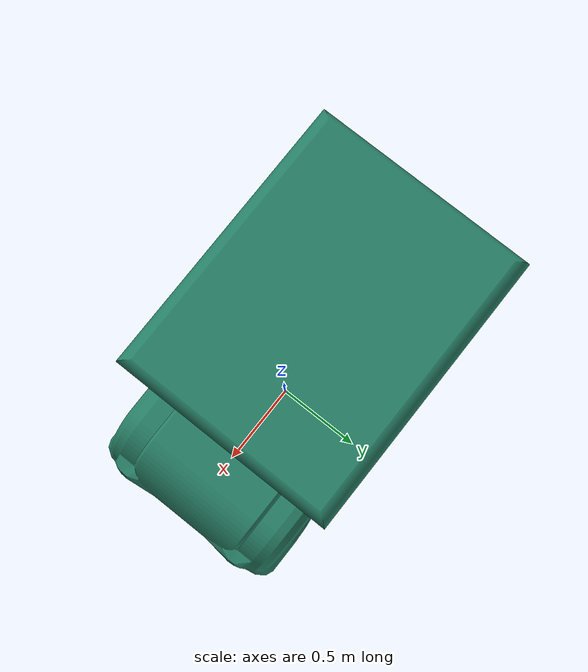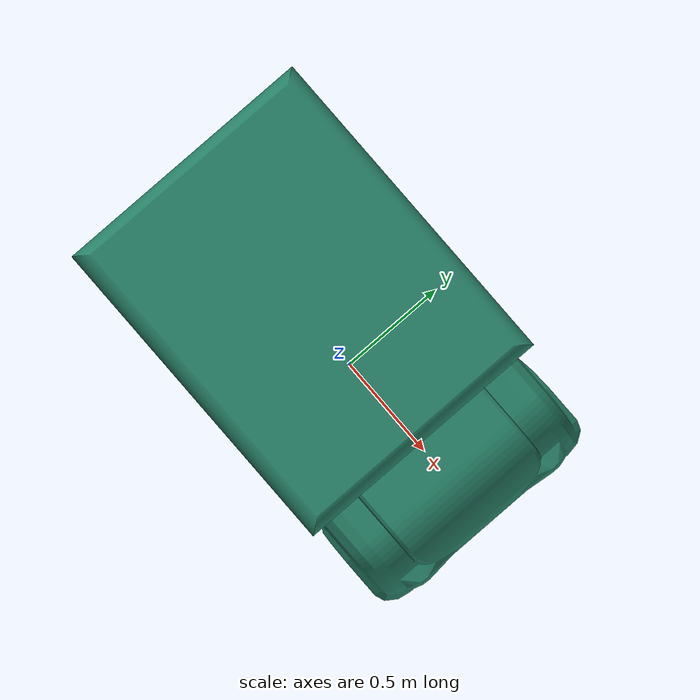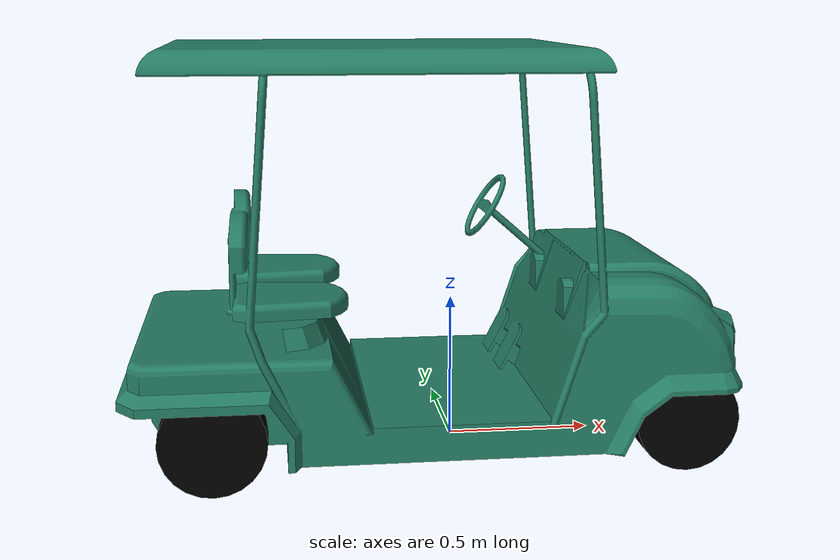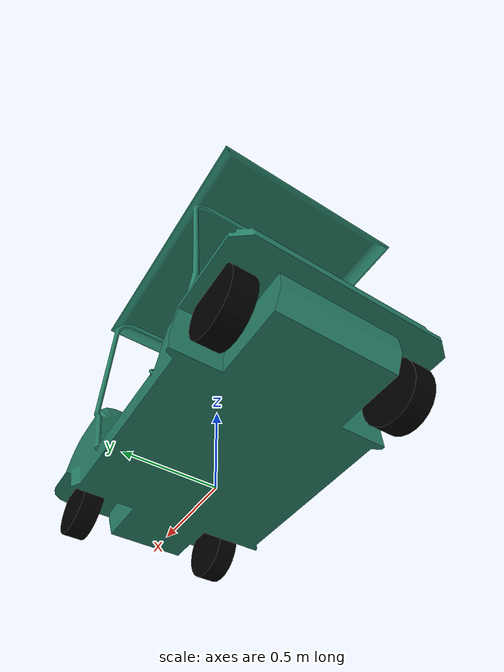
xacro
<?xml version="1.0"?>
<robot name="awin_golf_cart">

  <material name="chassis_mat">
      <color rgba="0.15 0.5 0.4 1"/>
  </material>
  <material name="tire_mat">
    <color rgba="0 0 0 1"/>
  </material>

  <link name="base_link">
    <visual>
      <origin rpy="0 0 1.57079633" xyz="1.2 -1.035 -0.1"/>
      <geometry>
        <mesh filename="package://golfcart_description/meshes/GolfCart.stl"/>
      </geometry>
      <material name="chassis_mat"/>
    </visual>
  </link>

  <!-- Roda kanan depan -->
  <link name="right_front_wheel">
      <visual>
        <geometry>
          <cylinder radius="0.173025" length="0.11"/>
        </geometry>
        <material name="tire_mat"/>
        <origin rpy="0 1.57075 1.57075" xyz="0 0 0"/>
      </visual>
  </link>
  <joint name="base_to_right_front_wheel" type="fixed">
    <parent link="base_link"/>
    <child link="right_front_wheel"/>
    <origin xyz="0.725 -0.42 0.173025"/>
  </joint>

  <!-- Roda kanan belakang -->
  <link name="right_rear_wheel">
      <visual>
        <geometry>
          <cylinder radius="0.173025" length="0.12"/>
        </geometry>
        <material name="tire_mat"/>
        <origin rpy="0 1.57075 1.57075" xyz="0 0 0"/>
      </visual>
  </link>
  <joint name="base_to_right_rear_wheel" type="fixed">
    <parent link="base_link"/>
    <child link="right_rear_wheel"/>
    <origin xyz="-0.825 -0.47 0.173025"/>
  </joint>

    <!-- Roda kiri depan -->
  <link name="left_front_wheel">
      <visual>
        <geometry>
          <cylinder radius="0.173025" length="0.11"/>
        </geometry>
        <material name="tire_mat"/>
        <origin rpy="0 1.57075 1.57075" xyz="0 0 0"/>
      </visual>
  </link>
  <joint name="base_to_left_front_wheel" type="fixed">
    <parent link="base_link"/>
    <child link="left_front_wheel"/>
    <origin xyz="0.725 0.42 0.173025"/>
  </joint>

  <!-- Roda kiri belakang -->
  <link name="left_rear_wheel">
      <visual>
        <geometry>
          <cylinder radius="0.173025" length="0.12"/>
        </geometry>
        <material name="tire_mat"/>
        <origin rpy="0 1.57075 1.57075" xyz="0 0 0"/>
      </visual>
  </link>
  <joint name="base_to_left_rear_wheel" type="fixed">
    <parent link="base_link"/>
    <child link="left_rear_wheel"/>
    <origin xyz="-0.825 0.47 0.173025"/>
  </joint>
</robot>
